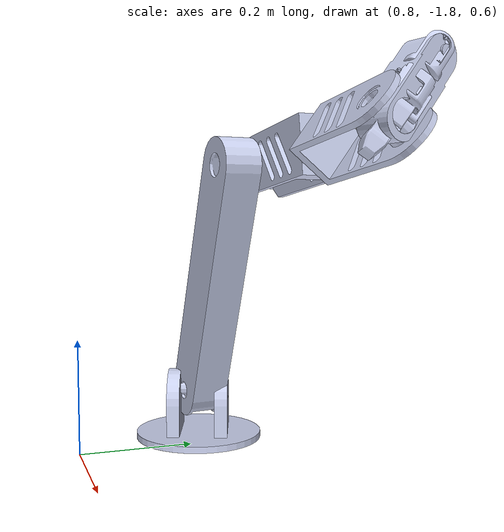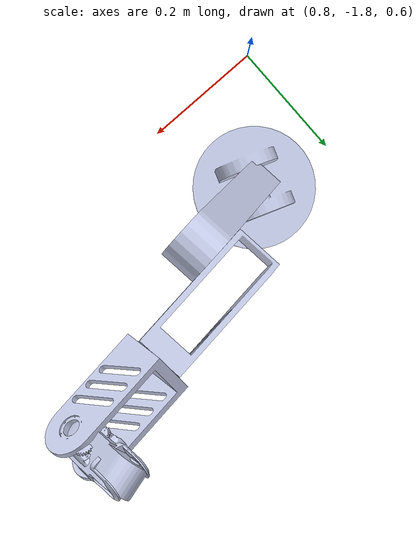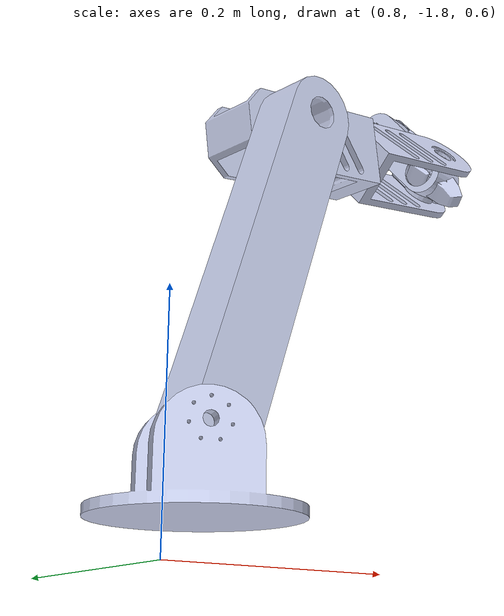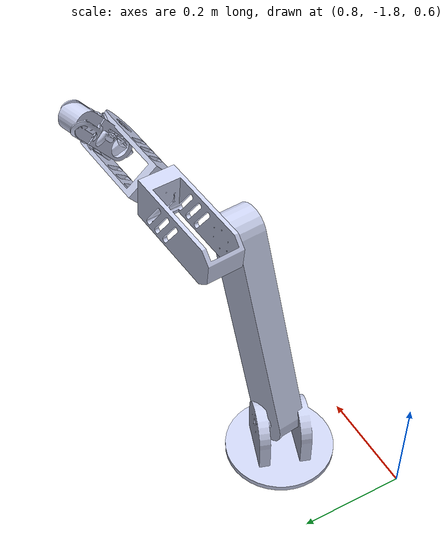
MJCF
<mujoco model="arm">
    <compiler angle="radian" coordinate="local" meshdir="meshes" autolimits="true"/>
      <option timestep="0.001"/>
      <option solver="Newton" iterations="50" tolerance="1e-10"/>

    <asset>
        <mesh name="base_link_mesh" file="base_link.STL" scale="1 1 1"/>
        <mesh name="shoulder_link_mesh" file="shoulder_link.STL" scale="1 1 1"/>
        <mesh name="elbow_link_mesh" file="elbow_link.STL" scale="1 1 1"/>
        <mesh name="wrist_link1_mesh" file="wrist_link1.STL" scale="1 1 1"/>
        <mesh name="wrist_link2_mesh" file="wrist_link2.STL" scale="1 1 1"/>
        <mesh name="wrist_link3_mesh" file="wrist_link3.STL" scale="1 1 1"/>
    </asset>

    <worldbody>
        <!-- Base -->
        <body name="base_link" pos="0 0 0">
            <inertial pos="0.9401 0.68999 1.6254"
                      mass="0.69063"
                      diaginertia="0.0019945 0.0023444 0.0018065"/>

            <geom type="mesh" mesh="base_link_mesh" contype="0" conaffinity="0" group="1" rgba="0.79216 0.81961 0.93333 1"/>

            <!-- Shoulder -->
            <body name="shoulder_link"
                  pos="0.94721 -1.6052 0.73686"
                  euler="1.5708 0.12264 -0.33837">

                <joint name="joint0"
                       type="hinge"
                       axis="0 0 1"
                       range="-1.57 1.57"
                       damping="0.2"
                       armature="0.01"
                       frictionloss="0.01"/>

                <inertial pos="2.3204E-13 0.19201 0.021452"
                          mass="0.52909"
                          diaginertia="0.0083742 0.00067881 0.0085718"/>

                <geom type="mesh" mesh="shoulder_link_mesh" contype="0" conaffinity="0" group="1" rgba="0.79216 0.81961 0.93333 1"/>

                <!-- Elbow -->
                <body name="elbow_link"
                      pos="0 0.37 0"
                      euler="0 0 -1.0913">

                    <joint name="joint1"
                           type="hinge"
                           axis="0 0 1"
                           range="-2.35 2.35"
                           damping="0.2"
                           armature="0.01"
                           frictionloss="0.01"/>

                    <inertial pos="-0.00040915 0.060791 -0.040286"
                              mass="0.30405"
                              diaginertia="0.001555 0.00042147 0.0014937"/>

                    <geom type="mesh" mesh="elbow_link_mesh"
                          rgba="0.79216 0.81961 0.93333 1"/>

                    <!-- Wrist 1 -->
                    <body name="wrist_link1"
                          pos="0 0.07405 -0.04106"
                          euler="0 0.87591 0">

                        <joint name="joint3"
                               type="hinge"
                               axis="0 1 0"
                               range="-2.35 2.35"
                               damping="0.2"
                               armature="0.01"
                               frictionloss="0.01"/>

                        <inertial pos="8.96158792158541E-05 0.133468259482244 -0.000295926857309836"
                                  mass="0.336426291824284"
                                  diaginertia="0.00152881099917185 0.00035171540397663 0.00158086128910011"/>

                        <geom type="mesh" mesh="wrist_link1_mesh" contype="0" conaffinity="0" group="1" rgba="0.79216 0.81961 0.93333 1"/>

                        <!-- Wrist 2 -->
                        <body name="wrist_link2"
                              pos="0 0.21394 0"
                              euler="-1.5708 0.19832 1.5708">

                            <joint name="joint4"
                                   type="hinge"
                                   axis="0 0 1"
                                   range="-2.35 2.35"
                                   damping="0.2"
                                   armature="0.01"
                                   frictionloss="0.01"/>

                            <inertial pos="0.053266 1.9073E-12 2.025E-13"
                                      mass="0.27316"
                                      diaginertia="0.00011138 0.00044491 0.00045088"/>

                            <geom type="mesh" mesh="wrist_link2_mesh" contype="0" conaffinity="0" group="1" rgba="0.79216 0.81961 0.93333 1"/>

                            <!-- Wrist 3 -->
                            <body name="wrist_link3"
                                  pos="0.102 0 0"
                                  euler="2.6957 -1.5708 0">

                                <joint name="joint5"
                                       type="hinge"
                                       axis="1 0 0"
                                       range="-2.35 2.35"
                                       damping="0.2"
                                       armature="0.01"
                                       frictionloss="0.01"/>

                                <inertial pos="-0.00094552 -0.00036859 0.080166"
                                          mass="0.16588"
                                          diaginertia="4.4169E-05 5.5852E-05 3.238E-05"/>

                                <geom type="mesh" mesh="wrist_link3_mesh" contype="0" conaffinity="0" group="1" rgba="0.79216 0.81961 0.93333 1"/>
                            </body>

                        </body>
                    </body>
                </body>
            </body>
        </body>

    </worldbody>
</mujoco>
